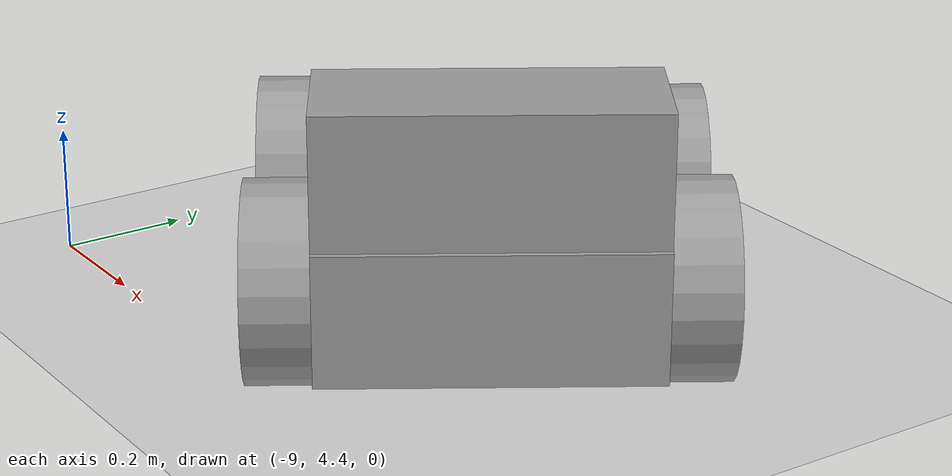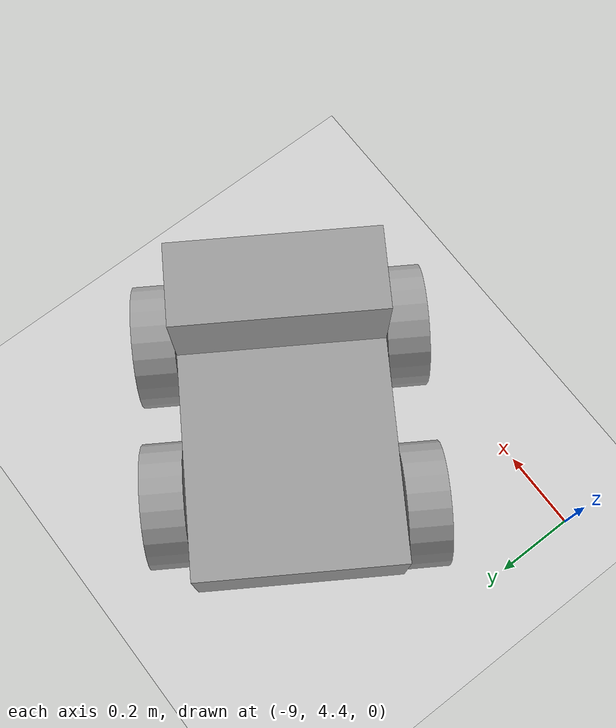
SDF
<sdf version="1.6">
 <world name="default">
  <model name="ground_plane">
   <static>1</static>
   <link name="link">
    <collision name="collision">
     <geometry><plane><normal>0 0 1</normal><size>100 100</size></plane></geometry>
     <surface><friction><ode><mu>100</mu><mu2>50</mu2></ode></friction></surface>
    </collision>
    <visual name="visual">
     <cast_shadows>0</cast_shadows>
     <geometry><plane><normal>0 0 1</normal><size>100 100</size></plane></geometry>
     <material>
      <script><uri>file://media/materials/scripts/gazebo.material</uri><name>Gazebo/Grey</name></script>
     </material>
    </visual>
   </link>
  </model>
  <model name="my_robot_1">
   <link name="link_0">
    <pose>-0.054167 -1e-06 -0.033333 0 -0 0</pose>
    <inertial>
     <mass>1</mass>
     <inertia>
      <ixx>0.166667</ixx>
      <ixy>0</ixy>
      <ixz>0</ixz>
      <iyy>0.166667</iyy>
      <iyz>0</iyz>
      <izz>0.166667</izz>
     </inertia>
    </inertial>
    <visual name="visual">
     <geometry><box><size>0.75 0.5 0.2</size></box></geometry>
     <material>
      <lighting>1</lighting>
      <script><uri>file://media/materials/scripts/gazebo.material</uri><name>Gazebo/Grey</name></script>
      <ambient>0.3 0.3 0.3 1</ambient>
      <diffuse>0.7 0.7 0.7 1</diffuse>
      <specular>0.01 0.01 0.01 1</specular>
      <emissive>0 0 0 1</emissive>
      <shader type="vertex"><normal_map>__default__</normal_map></shader>
     </material>
    </visual>
    <collision name="collision">
     <geometry><box><size>0.75 0.5 0.2</size></box></geometry>
     <surface>
      <friction>
       <ode><mu>1</mu><mu2>1</mu2><fdir1>0 0 0</fdir1><slip1>0</slip1><slip2>0</slip2></ode>
       <torsional>
        <coefficient>1</coefficient>
        <patch_radius>0</patch_radius>
        <surface_radius>0</surface_radius>
        <use_patch_radius>1</use_patch_radius>
        <ode><slip>0</slip></ode>
       </torsional>
      </friction>
      <bounce><restitution_coefficient>0</restitution_coefficient><threshold>1e+06</threshold></bounce>
      <contact>
       <collide_without_contact>0</collide_without_contact>
       <collide_without_contact_bitmask>1</collide_without_contact_bitmask>
       <collide_bitmask>1</collide_bitmask>
       <ode>
        <soft_cfm>0</soft_cfm>
        <soft_erp>0.2</soft_erp>
        <kp>1e+13</kp>
        <kd>1</kd>
        <max_vel>0.01</max_vel>
        <min_depth>0</min_depth>
       </ode>
       <bullet>
        <split_impulse>1</split_impulse>
        <split_impulse_penetration_threshold>-0.01</split_impulse_penetration_threshold>
        <soft_cfm>0</soft_cfm>
        <soft_erp>0.2</soft_erp>
        <kp>1e+13</kp>
        <kd>1</kd>
       </bullet>
      </contact>
     </surface>
    </collision>
   </link>
   <link name="link_1">
    <pose>-0.229167 0.300018 -0.033333 1.5707 -0 0</pose>
    <inertial>
     <mass>1</mass>
     <inertia><ixx>0.145833</ixx><ixy>0</ixy><ixz>0</ixz><iyy>0.145833</iyy><iyz>0</iyz><izz>0.125</izz></inertia>
    </inertial>
    <visual name="visual">
     <geometry><cylinder><radius>0.15</radius><length>0.1</length></cylinder></geometry>
     <material>
      <lighting>1</lighting>
      <script><uri>file://media/materials/scripts/gazebo.material</uri><name>Gazebo/Grey</name></script>
      <ambient>0.3 0.3 0.3 1</ambient>
      <diffuse>0.7 0.7 0.7 1</diffuse>
      <specular>0.01 0.01 0.01 1</specular>
      <emissive>0 0 0 1</emissive>
      <shader type="vertex"><normal_map>__default__</normal_map></shader>
     </material>
    </visual>
    <collision name="collision">
     <geometry><cylinder><radius>0.15</radius><length>0.1</length></cylinder></geometry>
     <surface>
      <friction>
       <ode><mu>1</mu><mu2>1</mu2><fdir1>0 0 0</fdir1><slip1>0</slip1><slip2>0</slip2></ode>
       <torsional>
        <coefficient>1</coefficient>
        <patch_radius>0</patch_radius>
        <surface_radius>0</surface_radius>
        <use_patch_radius>1</use_patch_radius>
        <ode><slip>0</slip></ode>
       </torsional>
      </friction>
      <bounce><restitution_coefficient>0</restitution_coefficient><threshold>1e+06</threshold></bounce>
      <contact>
       <collide_without_contact>0</collide_without_contact>
       <collide_without_contact_bitmask>1</collide_without_contact_bitmask>
       <collide_bitmask>1</collide_bitmask>
       <ode>
        <soft_cfm>0</soft_cfm>
        <soft_erp>0.2</soft_erp>
        <kp>1e+13</kp>
        <kd>1</kd>
        <max_vel>0.01</max_vel>
        <min_depth>0</min_depth>
       </ode>
       <bullet>
        <split_impulse>1</split_impulse>
        <split_impulse_penetration_threshold>-0.01</split_impulse_penetration_threshold>
        <soft_cfm>0</soft_cfm>
        <soft_erp>0.2</soft_erp>
        <kp>1e+13</kp>
        <kd>1</kd>
       </bullet>
      </contact>
     </surface>
    </collision>
   </link>
   <link name="link_1_clone">
    <pose>0.170833 0.300014 -0.033333 1.5707 -0 0</pose>
    <inertial>
     <mass>1</mass>
     <inertia><ixx>0.145833</ixx><ixy>0</ixy><ixz>0</ixz><iyy>0.145833</iyy><iyz>0</iyz><izz>0.125</izz></inertia>
    </inertial>
    <visual name="visual">
     <geometry><cylinder><radius>0.15</radius><length>0.1</length></cylinder></geometry>
     <material>
      <lighting>1</lighting>
      <script><uri>file://media/materials/scripts/gazebo.material</uri><name>Gazebo/Grey</name></script>
      <ambient>0.3 0.3 0.3 1</ambient>
      <diffuse>0.7 0.7 0.7 1</diffuse>
      <specular>0.01 0.01 0.01 1</specular>
      <emissive>0 0 0 1</emissive>
      <shader type="vertex"><normal_map>__default__</normal_map></shader>
     </material>
    </visual>
    <collision name="collision">
     <geometry><cylinder><radius>0.15</radius><length>0.1</length></cylinder></geometry>
     <surface>
      <friction>
       <ode><mu>1</mu><mu2>1</mu2><fdir1>0 0 0</fdir1><slip1>0</slip1><slip2>0</slip2></ode>
       <torsional>
        <coefficient>1</coefficient>
        <patch_radius>0</patch_radius>
        <surface_radius>0</surface_radius>
        <use_patch_radius>1</use_patch_radius>
        <ode><slip>0</slip></ode>
       </torsional>
      </friction>
      <bounce><restitution_coefficient>0</restitution_coefficient><threshold>1e+06</threshold></bounce>
      <contact>
       <collide_without_contact>0</collide_without_contact>
       <collide_without_contact_bitmask>1</collide_without_contact_bitmask>
       <collide_bitmask>1</collide_bitmask>
       <ode>
        <soft_cfm>0</soft_cfm>
        <soft_erp>0.2</soft_erp>
        <kp>1e+13</kp>
        <kd>1</kd>
        <max_vel>0.01</max_vel>
        <min_depth>0</min_depth>
       </ode>
       <bullet>
        <split_impulse>1</split_impulse>
        <split_impulse_penetration_threshold>-0.01</split_impulse_penetration_threshold>
        <soft_cfm>0</soft_cfm>
        <soft_erp>0.2</soft_erp>
        <kp>1e+13</kp>
        <kd>1</kd>
       </bullet>
      </contact>
     </surface>
    </collision>
   </link>
   <link name="link_1_clone_clone">
    <pose>-0.279167 -0.300015 -0.033333 1.5707 -0 0</pose>
    <inertial>
     <mass>1</mass>
     <inertia><ixx>0.145833</ixx><ixy>0</ixy><ixz>0</ixz><iyy>0.145833</iyy><iyz>0</iyz><izz>0.125</izz></inertia>
    </inertial>
    <visual name="visual">
     <geometry><cylinder><radius>0.15</radius><length>0.1</length></cylinder></geometry>
     <material>
      <lighting>1</lighting>
      <script><uri>file://media/materials/scripts/gazebo.material</uri><name>Gazebo/Grey</name></script>
      <ambient>0.3 0.3 0.3 1</ambient>
      <diffuse>0.7 0.7 0.7 1</diffuse>
      <specular>0.01 0.01 0.01 1</specular>
      <emissive>0 0 0 1</emissive>
      <shader type="vertex"><normal_map>__default__</normal_map></shader>
     </material>
    </visual>
    <collision name="collision">
     <geometry><cylinder><radius>0.15</radius><length>0.1</length></cylinder></geometry>
     <surface>
      <friction>
       <ode><mu>1</mu><mu2>1</mu2><fdir1>0 0 0</fdir1><slip1>0</slip1><slip2>0</slip2></ode>
       <torsional>
        <coefficient>1</coefficient>
        <patch_radius>0</patch_radius>
        <surface_radius>0</surface_radius>
        <use_patch_radius>1</use_patch_radius>
        <ode><slip>0</slip></ode>
       </torsional>
      </friction>
      <bounce><restitution_coefficient>0</restitution_coefficient><threshold>1e+06</threshold></bounce>
      <contact>
       <collide_without_contact>0</collide_without_contact>
       <collide_without_contact_bitmask>1</collide_without_contact_bitmask>
       <collide_bitmask>1</collide_bitmask>
       <ode>
        <soft_cfm>0</soft_cfm>
        <soft_erp>0.2</soft_erp>
        <kp>1e+13</kp>
        <kd>1</kd>
        <max_vel>0.01</max_vel>
        <min_depth>0</min_depth>
       </ode>
       <bullet>
        <split_impulse>1</split_impulse>
        <split_impulse_penetration_threshold>-0.01</split_impulse_penetration_threshold>
        <soft_cfm>0</soft_cfm>
        <soft_erp>0.2</soft_erp>
        <kp>1e+13</kp>
        <kd>1</kd>
       </bullet>
      </contact>
     </surface>
    </collision>
   </link>
   <link name="link_1_clone_clone_clone">
    <pose>0.170833 -0.300015 -0.033333 1.5707 -0 0</pose>
    <inertial>
     <mass>1</mass>
     <inertia><ixx>0.145833</ixx><ixy>0</ixy><ixz>0</ixz><iyy>0.145833</iyy><iyz>0</iyz><izz>0.125</izz></inertia>
    </inertial>
    <visual name="visual">
     <geometry><cylinder><radius>0.15</radius><length>0.1</length></cylinder></geometry>
     <material>
      <lighting>1</lighting>
      <script><uri>file://media/materials/scripts/gazebo.material</uri><name>Gazebo/Grey</name></script>
      <ambient>0.3 0.3 0.3 1</ambient>
      <diffuse>0.7 0.7 0.7 1</diffuse>
      <specular>0.01 0.01 0.01 1</specular>
      <emissive>0 0 0 1</emissive>
      <shader type="vertex"><normal_map>__default__</normal_map></shader>
     </material>
    </visual>
    <collision name="collision">
     <geometry><cylinder><radius>0.15</radius><length>0.1</length></cylinder></geometry>
     <surface>
      <friction>
       <ode><mu>1</mu><mu2>1</mu2><fdir1>0 0 0</fdir1><slip1>0</slip1><slip2>0</slip2></ode>
       <torsional>
        <coefficient>1</coefficient>
        <patch_radius>0</patch_radius>
        <surface_radius>0</surface_radius>
        <use_patch_radius>1</use_patch_radius>
        <ode><slip>0</slip></ode>
       </torsional>
      </friction>
      <bounce><restitution_coefficient>0</restitution_coefficient><threshold>1e+06</threshold></bounce>
      <contact>
       <collide_without_contact>0</collide_without_contact>
       <collide_without_contact_bitmask>1</collide_without_contact_bitmask>
       <collide_bitmask>1</collide_bitmask>
       <ode>
        <soft_cfm>0</soft_cfm>
        <soft_erp>0.2</soft_erp>
        <kp>1e+13</kp>
        <kd>1</kd>
        <max_vel>0.01</max_vel>
        <min_depth>0</min_depth>
       </ode>
       <bullet>
        <split_impulse>1</split_impulse>
        <split_impulse_penetration_threshold>-0.01</split_impulse_penetration_threshold>
        <soft_cfm>0</soft_cfm>
        <soft_erp>0.2</soft_erp>
        <kp>1e+13</kp>
        <kd>1</kd>
       </bullet>
      </contact>
     </surface>
    </collision>
   </link>
   <link name="link_2">
    <pose>0.220833 -1e-06 0.166667 0 -0 0</pose>
    <inertial>
     <mass>1</mass>
     <inertia>
      <ixx>0.166667</ixx>
      <ixy>0</ixy>
      <ixz>0</ixz>
      <iyy>0.166667</iyy>
      <iyz>0</iyz>
      <izz>0.166667</izz>
     </inertia>
    </inertial>
    <visual name="visual">
     <pose>-0.01 0 0 0 -0 0</pose>
     <geometry><box><size>0.2 0.5 0.2</size></box></geometry>
     <material>
      <lighting>1</lighting>
      <script><uri>file://media/materials/scripts/gazebo.material</uri><name>Gazebo/Grey</name></script>
      <ambient>0.3 0.3 0.3 1</ambient>
      <diffuse>0.7 0.7 0.7 1</diffuse>
      <specular>0.01 0.01 0.01 1</specular>
      <emissive>0 0 0 1</emissive>
      <shader type="vertex"><normal_map>__default__</normal_map></shader>
     </material>
    </visual>
    <collision name="collision">
     <geometry><box><size>0.2 0.5 0.2</size></box></geometry>
     <surface>
      <friction>
       <ode><mu>1</mu><mu2>1</mu2><fdir1>0 0 0</fdir1><slip1>0</slip1><slip2>0</slip2></ode>
       <torsional>
        <coefficient>1</coefficient>
        <patch_radius>0</patch_radius>
        <surface_radius>0</surface_radius>
        <use_patch_radius>1</use_patch_radius>
        <ode><slip>0</slip></ode>
       </torsional>
      </friction>
      <bounce><restitution_coefficient>0</restitution_coefficient><threshold>1e+06</threshold></bounce>
      <contact>
       <collide_without_contact>0</collide_without_contact>
       <collide_without_contact_bitmask>1</collide_without_contact_bitmask>
       <collide_bitmask>1</collide_bitmask>
       <ode>
        <soft_cfm>0</soft_cfm>
        <soft_erp>0.2</soft_erp>
        <kp>1e+13</kp>
        <kd>1</kd>
        <max_vel>0.01</max_vel>
        <min_depth>0</min_depth>
       </ode>
       <bullet>
        <split_impulse>1</split_impulse>
        <split_impulse_penetration_threshold>-0.01</split_impulse_penetration_threshold>
        <soft_cfm>0</soft_cfm>
        <soft_erp>0.2</soft_erp>
        <kp>1e+13</kp>
        <kd>1</kd>
       </bullet>
      </contact>
     </surface>
    </collision>
   </link>
   <joint name="link_0_JOINT_0" type="revolute">
    <parent>link_0</parent>
    <child>link_1</child>
    <axis>
     <xyz>0 0 1</xyz>
     <use_parent_model_frame>0</use_parent_model_frame>
     <limit>
      <lower>-1.79769e+308</lower>
      <upper>1.79769e+308</upper>
      <effort>-1</effort>
      <velocity>-1</velocity>
     </limit>
     <dynamics>
      <spring_reference>0</spring_reference>
      <spring_stiffness>0</spring_stiffness>
      <damping>0</damping>
     </dynamics>
    </axis>
    <physics>
     <ode><limit><cfm>0</cfm><erp>0.2</erp></limit><suspension><cfm>0</cfm><erp>0.2</erp></suspension></ode>
    </physics>
   </joint>
   <joint name="link_0_JOINT_1" type="revolute">
    <parent>link_0</parent>
    <child>link_1_clone</child>
    <axis>
     <xyz>0 0 1</xyz>
     <use_parent_model_frame>0</use_parent_model_frame>
     <limit>
      <lower>-1.79769e+308</lower>
      <upper>1.79769e+308</upper>
      <effort>-1</effort>
      <velocity>-1</velocity>
     </limit>
     <dynamics>
      <spring_reference>0</spring_reference>
      <spring_stiffness>0</spring_stiffness>
      <damping>0</damping>
     </dynamics>
    </axis>
    <physics>
     <ode><limit><cfm>0</cfm><erp>0.2</erp></limit><suspension><cfm>0</cfm><erp>0.2</erp></suspension></ode>
    </physics>
   </joint>
   <joint name="link_0_JOINT_2" type="revolute">
    <parent>link_0</parent>
    <child>link_1_clone_clone</child>
    <axis>
     <xyz>0 0 1</xyz>
     <use_parent_model_frame>0</use_parent_model_frame>
     <limit>
      <lower>-1.79769e+308</lower>
      <upper>1.79769e+308</upper>
      <effort>-1</effort>
      <velocity>-1</velocity>
     </limit>
     <dynamics>
      <spring_reference>0</spring_reference>
      <spring_stiffness>0</spring_stiffness>
      <damping>0</damping>
     </dynamics>
    </axis>
    <physics>
     <ode><limit><cfm>0</cfm><erp>0.2</erp></limit><suspension><cfm>0</cfm><erp>0.2</erp></suspension></ode>
    </physics>
   </joint>
   <joint name="link_0_JOINT_3" type="revolute">
    <parent>link_0</parent>
    <child>link_1_clone_clone_clone</child>
    <axis>
     <xyz>1 0 0</xyz>
     <use_parent_model_frame>0</use_parent_model_frame>
     <limit>
      <lower>-1.79769e+308</lower>
      <upper>1.79769e+308</upper>
      <effort>-1</effort>
      <velocity>-1</velocity>
     </limit>
     <dynamics>
      <spring_reference>0</spring_reference>
      <spring_stiffness>0</spring_stiffness>
      <damping>0</damping>
     </dynamics>
    </axis>
    <physics>
     <ode><limit><cfm>0</cfm><erp>0.2</erp></limit><suspension><cfm>0</cfm><erp>0.2</erp></suspension></ode>
    </physics>
   </joint>
   <joint name="link_0_JOINT_4" type="fixed">
    <parent>link_0</parent>
    <child>link_2</child>
    <physics>
     <ode><limit><cfm>0</cfm><erp>0.2</erp></limit><suspension><cfm>0</cfm><erp>0.2</erp></suspension></ode>
    </physics>
   </joint>
   <static>0</static>
   <pose>-8.36272 4.78919 0.183337 3e-06 4e-06 -0.56843</pose>
  </model>
 </world>
</sdf>
